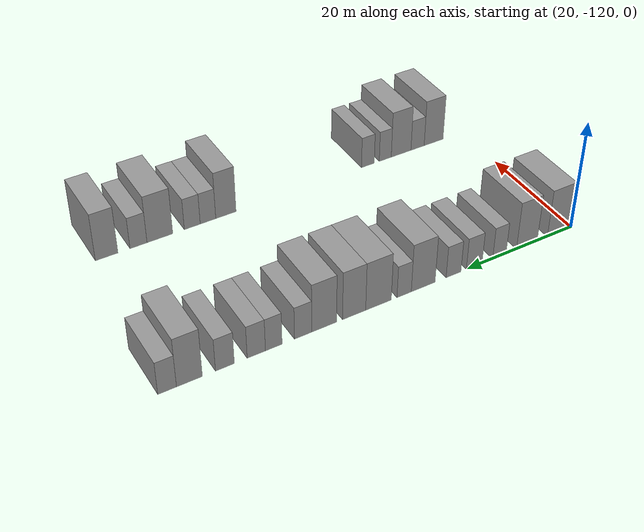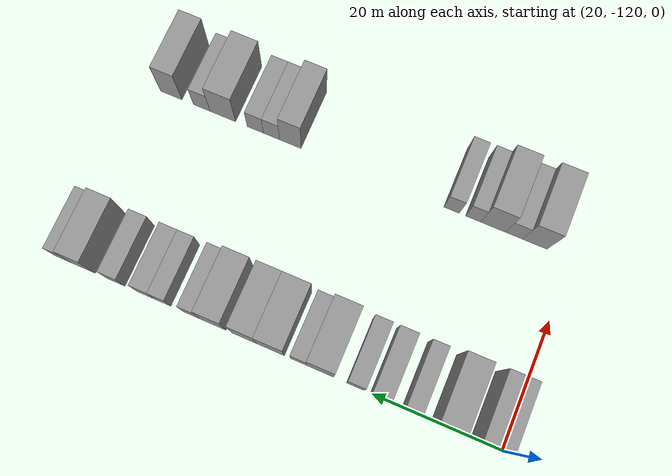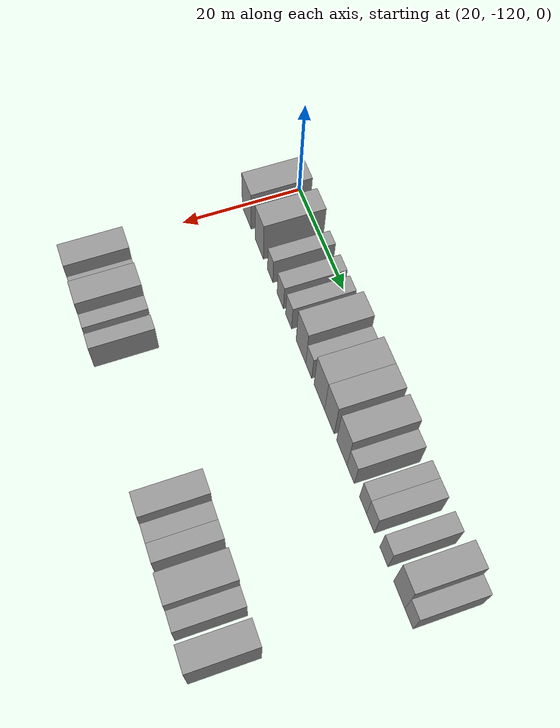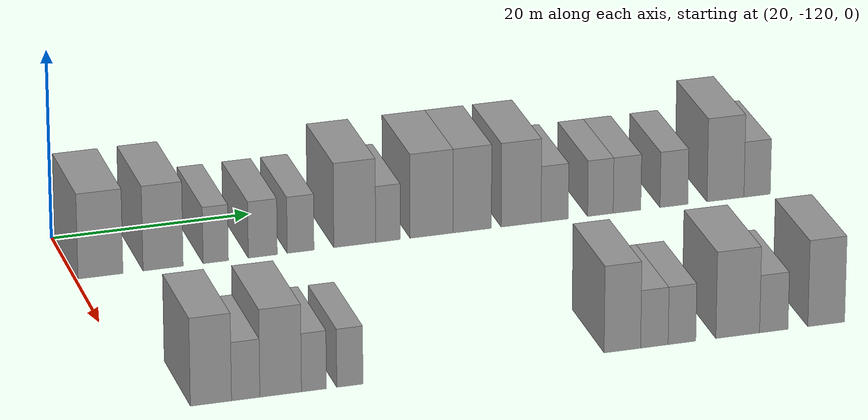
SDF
<sdf version="1.6">
 <world name="default">
  <model name="building_25">
   <static>1</static>
   <pose>25.0000 -117.4849 0 0.000000 0.000000 0.000000</pose>
   <link name="link">
    <pose>0 0 4.50 0 0 0</pose>
    <collision name="collision"><geometry><box><size>10.0000 4.4751 9.0000</size></box></geometry></collision>
    <visual name="visual">
     <cast_shadows>0</cast_shadows>
     <geometry><box><size>10.0000 4.4751 9.0000</size></box></geometry>
     <material>
      <script>
       <uri>model://grey_wall/materials/scripts</uri>
       <uri>model://grey_wall/materials/textures</uri>
       <name>vrc/grey_wall</name>
      </script>
     </material>
    </visual>
   </link>
  </model>
  <model name="building_26">
   <static>1</static>
   <pose>25.0000 -111.2404 0 0.000000 0.000000 0.000000</pose>
   <link name="link">
    <pose>0 0 4.50 0 0 0</pose>
    <collision name="collision"><geometry><box><size>10.0000 4.0138 9.0000</size></box></geometry></collision>
    <visual name="visual">
     <cast_shadows>0</cast_shadows>
     <geometry><box><size>10.0000 4.0138 9.0000</size></box></geometry>
     <material>
      <script>
       <uri>model://grey_wall/materials/scripts</uri>
       <uri>model://grey_wall/materials/textures</uri>
       <name>vrc/grey_wall</name>
      </script>
     </material>
    </visual>
   </link>
  </model>
  <model name="building_27">
   <static>1</static>
   <pose>25.0000 -105.9626 0 0.000000 0.000000 0.000000</pose>
   <link name="link">
    <pose>0 0 3.00 0 0 0</pose>
    <collision name="collision"><geometry><box><size>10.0000 2.5419 6.0000</size></box></geometry></collision>
    <visual name="visual">
     <cast_shadows>0</cast_shadows>
     <geometry><box><size>10.0000 2.5419 6.0000</size></box></geometry>
     <material>
      <script>
       <uri>model://grey_wall/materials/scripts</uri>
       <uri>model://grey_wall/materials/textures</uri>
       <name>vrc/grey_wall</name>
      </script>
     </material>
    </visual>
   </link>
  </model>
  <model name="building_28">
   <static>1</static>
   <pose>25.0000 -101.2293 0 0.000000 0.000000 0.000000</pose>
   <link name="link">
    <pose>0 0 3.00 0 0 0</pose>
    <collision name="collision"><geometry><box><size>10.0000 2.9246 6.0000</size></box></geometry></collision>
    <visual name="visual">
     <cast_shadows>0</cast_shadows>
     <geometry><box><size>10.0000 2.9246 6.0000</size></box></geometry>
     <material>
      <script>
       <uri>model://grey_wall/materials/scripts</uri>
       <uri>model://grey_wall/materials/textures</uri>
       <name>vrc/grey_wall</name>
      </script>
     </material>
    </visual>
   </link>
  </model>
  <model name="building_29">
   <static>1</static>
   <pose>25.0000 -97.4095 0 0.000000 0.000000 0.000000</pose>
   <link name="link">
    <pose>0 0 3.00 0 0 0</pose>
    <collision name="collision"><geometry><box><size>10.0000 2.7150 6.0000</size></box></geometry></collision>
    <visual name="visual">
     <cast_shadows>0</cast_shadows>
     <geometry><box><size>10.0000 2.7150 6.0000</size></box></geometry>
     <material>
      <script>
       <uri>model://grey_wall/materials/scripts</uri>
       <uri>model://grey_wall/materials/textures</uri>
       <name>vrc/grey_wall</name>
      </script>
     </material>
    </visual>
   </link>
  </model>
  <model name="building_30">
   <static>1</static>
   <pose>25.0000 -91.9253 0 0.000000 0.000000 0.000000</pose>
   <link name="link">
    <pose>0 0 4.50 0 0 0</pose>
    <collision name="collision"><geometry><box><size>10.0000 4.2534 9.0000</size></box></geometry></collision>
    <visual name="visual">
     <cast_shadows>0</cast_shadows>
     <geometry><box><size>10.0000 4.2534 9.0000</size></box></geometry>
     <material>
      <script>
       <uri>model://grey_wall/materials/scripts</uri>
       <uri>model://grey_wall/materials/textures</uri>
       <name>vrc/grey_wall</name>
      </script>
     </material>
    </visual>
   </link>
  </model>
  <model name="building_31">
   <static>1</static>
   <pose>25.0000 -88.5392 0 0.000000 0.000000 0.000000</pose>
   <link name="link">
    <pose>0 0 3.00 0 0 0</pose>
    <collision name="collision"><geometry><box><size>10.0000 2.5188 6.0000</size></box></geometry></collision>
    <visual name="visual">
     <cast_shadows>0</cast_shadows>
     <geometry><box><size>10.0000 2.5188 6.0000</size></box></geometry>
     <material>
      <script>
       <uri>model://grey_wall/materials/scripts</uri>
       <uri>model://grey_wall/materials/textures</uri>
       <name>vrc/grey_wall</name>
      </script>
     </material>
    </visual>
   </link>
  </model>
  <model name="building_32">
   <static>1</static>
   <pose>25.0000 -84.0698 0 0.000000 0.000000 0.000000</pose>
   <link name="link">
    <pose>0 0 4.50 0 0 0</pose>
    <collision name="collision"><geometry><box><size>10.0000 4.4201 9.0000</size></box></geometry></collision>
    <visual name="visual">
     <cast_shadows>0</cast_shadows>
     <geometry><box><size>10.0000 4.4201 9.0000</size></box></geometry>
     <material>
      <script>
       <uri>model://grey_wall/materials/scripts</uri>
       <uri>model://grey_wall/materials/textures</uri>
       <name>vrc/grey_wall</name>
      </script>
     </material>
    </visual>
   </link>
  </model>
  <model name="building_33">
   <static>1</static>
   <pose>25.0000 -79.8985 0 0.000000 0.000000 0.000000</pose>
   <link name="link">
    <pose>0 0 4.50 0 0 0</pose>
    <collision name="collision"><geometry><box><size>10.0000 3.9224 9.0000</size></box></geometry></collision>
    <visual name="visual">
     <cast_shadows>0</cast_shadows>
     <geometry><box><size>10.0000 3.9224 9.0000</size></box></geometry>
     <material>
      <script>
       <uri>model://grey_wall/materials/scripts</uri>
       <uri>model://grey_wall/materials/textures</uri>
       <name>vrc/grey_wall</name>
      </script>
     </material>
    </visual>
   </link>
  </model>
  <model name="building_34">
   <static>1</static>
   <pose>25.0000 -74.8766 0 0.000000 0.000000 0.000000</pose>
   <link name="link">
    <pose>0 0 4.50 0 0 0</pose>
    <collision name="collision"><geometry><box><size>10.0000 4.1214 9.0000</size></box></geometry></collision>
    <visual name="visual">
     <cast_shadows>0</cast_shadows>
     <geometry><box><size>10.0000 4.1214 9.0000</size></box></geometry>
     <material>
      <script>
       <uri>model://grey_wall/materials/scripts</uri>
       <uri>model://grey_wall/materials/textures</uri>
       <name>vrc/grey_wall</name>
      </script>
     </material>
    </visual>
   </link>
  </model>
  <model name="building_35">
   <static>1</static>
   <pose>25.0000 -71.4069 0 0.000000 0.000000 0.000000</pose>
   <link name="link">
    <pose>0 0 3.00 0 0 0</pose>
    <collision name="collision"><geometry><box><size>10.0000 2.8181 6.0000</size></box></geometry></collision>
    <visual name="visual">
     <cast_shadows>0</cast_shadows>
     <geometry><box><size>10.0000 2.8181 6.0000</size></box></geometry>
     <material>
      <script>
       <uri>model://grey_wall/materials/scripts</uri>
       <uri>model://grey_wall/materials/textures</uri>
       <name>vrc/grey_wall</name>
      </script>
     </material>
    </visual>
   </link>
  </model>
  <model name="building_36">
   <static>1</static>
   <pose>25.0000 -66.6656 0 0.000000 0.000000 0.000000</pose>
   <link name="link">
    <pose>0 0 3.00 0 0 0</pose>
    <collision name="collision"><geometry><box><size>10.0000 2.6644 6.0000</size></box></geometry></collision>
    <visual name="visual">
     <cast_shadows>0</cast_shadows>
     <geometry><box><size>10.0000 2.6644 6.0000</size></box></geometry>
     <material>
      <script>
       <uri>model://grey_wall/materials/scripts</uri>
       <uri>model://grey_wall/materials/textures</uri>
       <name>vrc/grey_wall</name>
      </script>
     </material>
    </visual>
   </link>
  </model>
  <model name="building_37">
   <static>1</static>
   <pose>25.0000 -63.8948 0 0.000000 0.000000 0.000000</pose>
   <link name="link">
    <pose>0 0 3.00 0 0 0</pose>
    <collision name="collision"><geometry><box><size>10.0000 2.8771 6.0000</size></box></geometry></collision>
    <visual name="visual">
     <cast_shadows>0</cast_shadows>
     <geometry><box><size>10.0000 2.8771 6.0000</size></box></geometry>
     <material>
      <script>
       <uri>model://grey_wall/materials/scripts</uri>
       <uri>model://grey_wall/materials/textures</uri>
       <name>vrc/grey_wall</name>
      </script>
     </material>
    </visual>
   </link>
  </model>
  <model name="building_38">
   <static>1</static>
   <pose>25.0000 -58.9998 0 0.000000 0.000000 0.000000</pose>
   <link name="link">
    <pose>0 0 3.00 0 0 0</pose>
    <collision name="collision"><geometry><box><size>10.0000 2.9128 6.0000</size></box></geometry></collision>
    <visual name="visual">
     <cast_shadows>0</cast_shadows>
     <geometry><box><size>10.0000 2.9128 6.0000</size></box></geometry>
     <material>
      <script>
       <uri>model://grey_wall/materials/scripts</uri>
       <uri>model://grey_wall/materials/textures</uri>
       <name>vrc/grey_wall</name>
      </script>
     </material>
    </visual>
   </link>
  </model>
  <model name="building_39">
   <static>1</static>
   <pose>25.0000 -53.5997 0 0.000000 0.000000 0.000000</pose>
   <link name="link">
    <pose>0 0 4.50 0 0 0</pose>
    <collision name="collision"><geometry><box><size>10.0000 3.8875 9.0000</size></box></geometry></collision>
    <visual name="visual">
     <cast_shadows>0</cast_shadows>
     <geometry><box><size>10.0000 3.8875 9.0000</size></box></geometry>
     <material>
      <script>
       <uri>model://grey_wall/materials/scripts</uri>
       <uri>model://grey_wall/materials/textures</uri>
       <name>vrc/grey_wall</name>
      </script>
     </material>
    </visual>
   </link>
  </model>
  <model name="building_40">
   <static>1</static>
   <pose>25.0000 -50.2685 0 0.000000 0.000000 0.000000</pose>
   <link name="link">
    <pose>0 0 3.00 0 0 0</pose>
    <collision name="collision"><geometry><box><size>10.0000 2.7749 6.0000</size></box></geometry></collision>
    <visual name="visual">
     <cast_shadows>0</cast_shadows>
     <geometry><box><size>10.0000 2.7749 6.0000</size></box></geometry>
     <material>
      <script>
       <uri>model://grey_wall/materials/scripts</uri>
       <uri>model://grey_wall/materials/textures</uri>
       <name>vrc/grey_wall</name>
      </script>
     </material>
    </visual>
   </link>
  </model>
  <model name="building_135">
   <static>1</static>
   <pose>55.0000 -114.1450 0 0.000000 0.000000 0.000000</pose>
   <link name="link">
    <pose>0 0 4.50 0 0 0</pose>
    <collision name="collision"><geometry><box><size>10.0000 3.9349 9.0000</size></box></geometry></collision>
    <visual name="visual">
     <cast_shadows>0</cast_shadows>
     <geometry><box><size>10.0000 3.9349 9.0000</size></box></geometry>
     <material>
      <script>
       <uri>model://grey_wall/materials/scripts</uri>
       <uri>model://grey_wall/materials/textures</uri>
       <name>vrc/grey_wall</name>
      </script>
     </material>
    </visual>
   </link>
  </model>
  <model name="building_136">
   <static>1</static>
   <pose>55.0000 -110.8173 0 0.000000 0.000000 0.000000</pose>
   <link name="link">
    <pose>0 0 3.00 0 0 0</pose>
    <collision name="collision"><geometry><box><size>10.0000 2.7204 6.0000</size></box></geometry></collision>
    <visual name="visual">
     <cast_shadows>0</cast_shadows>
     <geometry><box><size>10.0000 2.7204 6.0000</size></box></geometry>
     <material>
      <script>
       <uri>model://grey_wall/materials/scripts</uri>
       <uri>model://grey_wall/materials/textures</uri>
       <name>vrc/grey_wall</name>
      </script>
     </material>
    </visual>
   </link>
  </model>
  <model name="building_137">
   <static>1</static>
   <pose>55.0000 -107.4563 0 0.000000 0.000000 0.000000</pose>
   <link name="link">
    <pose>0 0 4.50 0 0 0</pose>
    <collision name="collision"><geometry><box><size>10.0000 4.0018 9.0000</size></box></geometry></collision>
    <visual name="visual">
     <cast_shadows>0</cast_shadows>
     <geometry><box><size>10.0000 4.0018 9.0000</size></box></geometry>
     <material>
      <script>
       <uri>model://grey_wall/materials/scripts</uri>
       <uri>model://grey_wall/materials/textures</uri>
       <name>vrc/grey_wall</name>
      </script>
     </material>
    </visual>
   </link>
  </model>
  <model name="building_138">
   <static>1</static>
   <pose>55.0000 -104.2515 0 0.000000 0.000000 0.000000</pose>
   <link name="link">
    <pose>0 0 3.00 0 0 0</pose>
    <collision name="collision"><geometry><box><size>10.0000 2.4077 6.0000</size></box></geometry></collision>
    <visual name="visual">
     <cast_shadows>0</cast_shadows>
     <geometry><box><size>10.0000 2.4077 6.0000</size></box></geometry>
     <material>
      <script>
       <uri>model://grey_wall/materials/scripts</uri>
       <uri>model://grey_wall/materials/textures</uri>
       <name>vrc/grey_wall</name>
      </script>
     </material>
    </visual>
   </link>
  </model>
  <model name="building_139">
   <static>1</static>
   <pose>55.0000 -100.7811 0 0.000000 0.000000 0.000000</pose>
   <link name="link">
    <pose>0 0 3.00 0 0 0</pose>
    <collision name="collision"><geometry><box><size>10.0000 2.5333 6.0000</size></box></geometry></collision>
    <visual name="visual">
     <cast_shadows>0</cast_shadows>
     <geometry><box><size>10.0000 2.5333 6.0000</size></box></geometry>
     <material>
      <script>
       <uri>model://grey_wall/materials/scripts</uri>
       <uri>model://grey_wall/materials/textures</uri>
       <name>vrc/grey_wall</name>
      </script>
     </material>
    </visual>
   </link>
  </model>
  <model name="building_140">
   <static>1</static>
   <pose>55.0000 -74.0831 0 0.000000 0.000000 0.000000</pose>
   <link name="link">
    <pose>0 0 4.50 0 0 0</pose>
    <collision name="collision"><geometry><box><size>10.0000 3.6209 9.0000</size></box></geometry></collision>
    <visual name="visual">
     <cast_shadows>0</cast_shadows>
     <geometry><box><size>10.0000 3.6209 9.0000</size></box></geometry>
     <material>
      <script>
       <uri>model://grey_wall/materials/scripts</uri>
       <uri>model://grey_wall/materials/textures</uri>
       <name>vrc/grey_wall</name>
      </script>
     </material>
    </visual>
   </link>
  </model>
  <model name="building_141">
   <static>1</static>
   <pose>55.0000 -70.9052 0 0.000000 0.000000 0.000000</pose>
   <link name="link">
    <pose>0 0 3.00 0 0 0</pose>
    <collision name="collision"><geometry><box><size>10.0000 2.7350 6.0000</size></box></geometry></collision>
    <visual name="visual">
     <cast_shadows>0</cast_shadows>
     <geometry><box><size>10.0000 2.7350 6.0000</size></box></geometry>
     <material>
      <script>
       <uri>model://grey_wall/materials/scripts</uri>
       <uri>model://grey_wall/materials/textures</uri>
       <name>vrc/grey_wall</name>
      </script>
     </material>
    </visual>
   </link>
  </model>
  <model name="building_142">
   <static>1</static>
   <pose>55.0000 -68.1562 0 0.000000 0.000000 0.000000</pose>
   <link name="link">
    <pose>0 0 3.00 0 0 0</pose>
    <collision name="collision"><geometry><box><size>10.0000 2.7629 6.0000</size></box></geometry></collision>
    <visual name="visual">
     <cast_shadows>0</cast_shadows>
     <geometry><box><size>10.0000 2.7629 6.0000</size></box></geometry>
     <material>
      <script>
       <uri>model://grey_wall/materials/scripts</uri>
       <uri>model://grey_wall/materials/textures</uri>
       <name>vrc/grey_wall</name>
      </script>
     </material>
    </visual>
   </link>
  </model>
  <model name="building_143">
   <static>1</static>
   <pose>55.0000 -62.5851 0 0.000000 0.000000 0.000000</pose>
   <link name="link">
    <pose>0 0 4.50 0 0 0</pose>
    <collision name="collision"><geometry><box><size>10.0000 4.3792 9.0000</size></box></geometry></collision>
    <visual name="visual">
     <cast_shadows>0</cast_shadows>
     <geometry><box><size>10.0000 4.3792 9.0000</size></box></geometry>
     <material>
      <script>
       <uri>model://grey_wall/materials/scripts</uri>
       <uri>model://grey_wall/materials/textures</uri>
       <name>vrc/grey_wall</name>
      </script>
     </material>
    </visual>
   </link>
  </model>
  <model name="building_144">
   <static>1</static>
   <pose>55.0000 -58.9670 0 0.000000 0.000000 0.000000</pose>
   <link name="link">
    <pose>0 0 3.00 0 0 0</pose>
    <collision name="collision"><geometry><box><size>10.0000 2.8569 6.0000</size></box></geometry></collision>
    <visual name="visual">
     <cast_shadows>0</cast_shadows>
     <geometry><box><size>10.0000 2.8569 6.0000</size></box></geometry>
     <material>
      <script>
       <uri>model://grey_wall/materials/scripts</uri>
       <uri>model://grey_wall/materials/textures</uri>
       <name>vrc/grey_wall</name>
      </script>
     </material>
    </visual>
   </link>
  </model>
  <model name="building_145">
   <static>1</static>
   <pose>55.0000 -53.6835 0 0.000000 0.000000 0.000000</pose>
   <link name="link">
    <pose>0 0 4.50 0 0 0</pose>
    <collision name="collision"><geometry><box><size>10.0000 3.7102 9.0000</size></box></geometry></collision>
    <visual name="visual">
     <cast_shadows>0</cast_shadows>
     <geometry><box><size>10.0000 3.7102 9.0000</size></box></geometry>
     <material>
      <script>
       <uri>model://grey_wall/materials/scripts</uri>
       <uri>model://grey_wall/materials/textures</uri>
       <name>vrc/grey_wall</name>
      </script>
     </material>
    </visual>
   </link>
  </model>
 </world>
</sdf>
